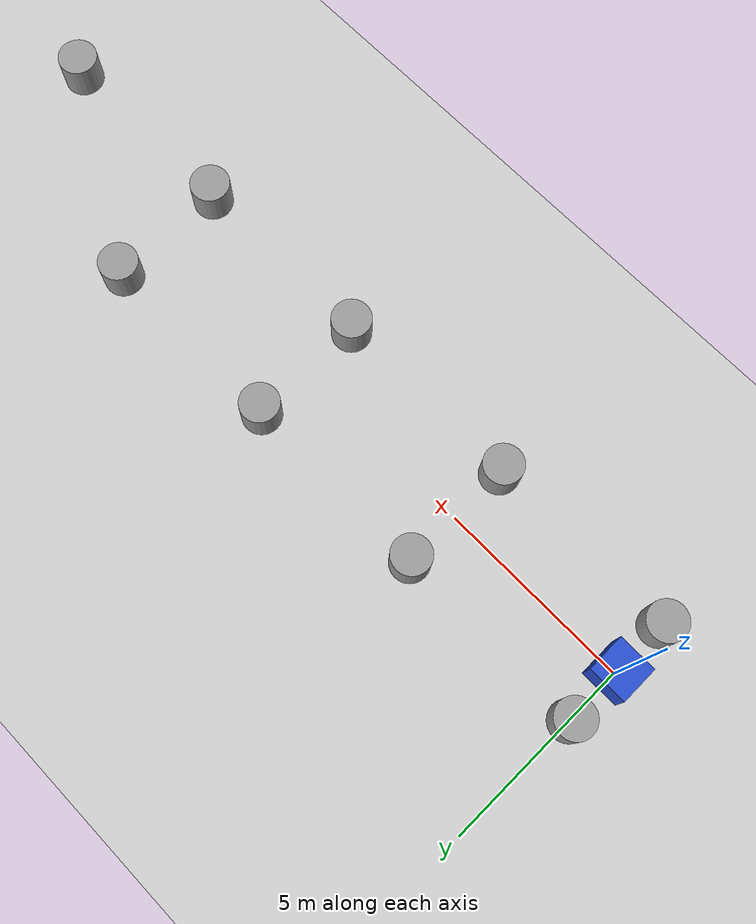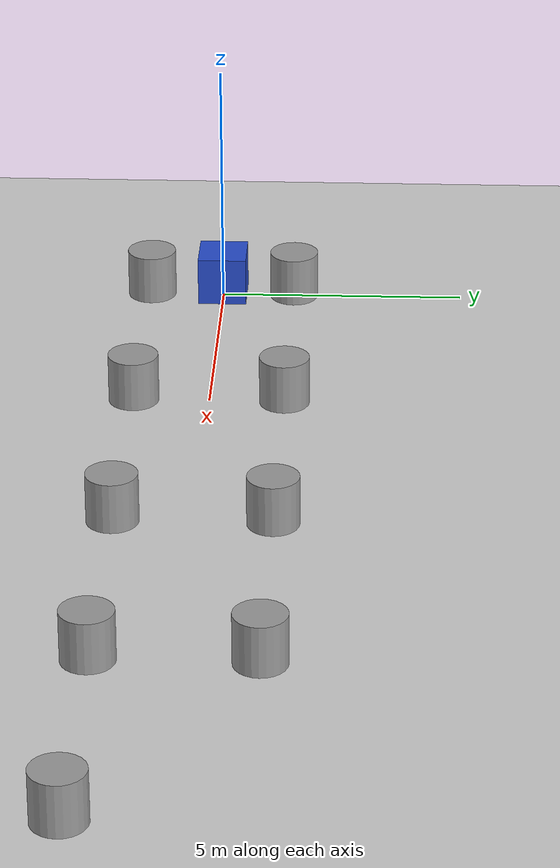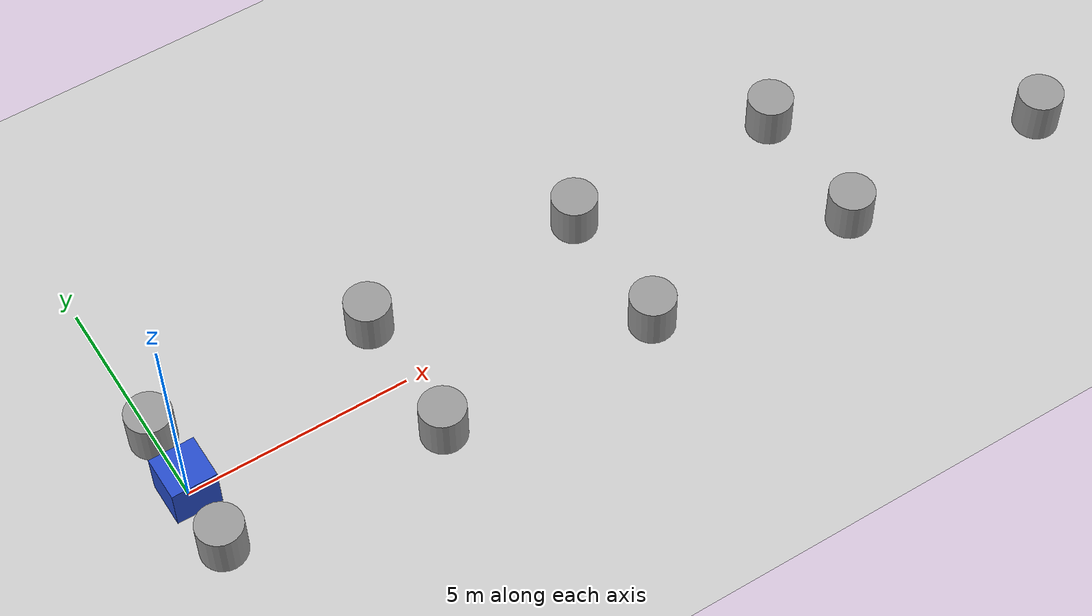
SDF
<sdf version="1.7">
 <world name="default">
  <model name="ground_plane">
   <static>1</static>
   <link name="link">
    <collision name="collision">
     <geometry><plane><normal>0 0 1</normal><size>100 100</size></plane></geometry>
     <surface>
      <contact><collide_bitmask>65535</collide_bitmask></contact>
      <friction><ode><mu>100</mu><mu2>50</mu2></ode></friction>
     </surface>
    </collision>
    <visual name="visual">
     <cast_shadows>0</cast_shadows>
     <geometry><plane><normal>0 0 1</normal><size>100 100</size></plane></geometry>
     <material>
      <script><uri>file://media/materials/scripts/gazebo.material</uri><name>Gazebo/Grey</name></script>
     </material>
    </visual>
   </link>
  </model>
  <model name="box_robot">
   <link name="base_link">
    <inertial>
     <mass>1000</mass>
     <inertia><ixx>166.667</ixx><ixy>0</ixy><ixz>0</ixz><iyy>166.667</iyy><iyz>0</iyz><izz>166.667</izz></inertia>
    </inertial>
    <collision name="base_link_collision">
     <geometry><box><size>1 1 1</size></box></geometry>
     <surface><friction><ode><mu>0.5</mu><mu2>0.5</mu2></ode></friction></surface>
    </collision>
    <visual name="base_link_visual">
     <geometry><box><size>1 1 1</size></box></geometry>
     <material>
      <script><name>Gazebo/Blue</name><uri>file://media/materials/scripts/gazebo.material</uri></script>
     </material>
    </visual>
   </link>
   <pose>0 -0 0.5 0 -0 0</pose>
  </model>
  <model name="unit_cylinder">
   <pose>15 -1.5 0.499994 -3e-06 -1e-06 -0</pose>
   <link name="link">
    <inertial>
     <mass>1</mass>
     <inertia><ixx>0.145833</ixx><ixy>0</ixy><ixz>0</ixz><iyy>0.145833</iyy><iyz>0</iyz><izz>0.125</izz></inertia>
    </inertial>
    <collision name="collision">
     <geometry><cylinder><radius>0.5</radius><length>1</length></cylinder></geometry>
    </collision>
    <visual name="visual">
     <geometry><cylinder><radius>0.5</radius><length>1</length></cylinder></geometry>
     <material>
      <script><name>Gazebo/Grey</name><uri>file://media/materials/scripts/gazebo.material</uri></script>
     </material>
    </visual>
   </link>
  </model>
  <model name="unit_cylinder_clone_0">
   <pose>20 -1.5 0.49999 0 -0 0</pose>
   <link name="link">
    <inertial>
     <mass>1</mass>
     <inertia><ixx>0.145833</ixx><ixy>0</ixy><ixz>0</ixz><iyy>0.145833</iyy><iyz>0</iyz><izz>0.125</izz></inertia>
    </inertial>
    <collision name="collision">
     <geometry><cylinder><radius>0.5</radius><length>1</length></cylinder></geometry>
    </collision>
    <visual name="visual">
     <geometry><cylinder><radius>0.5</radius><length>1</length></cylinder></geometry>
     <material>
      <script><name>Gazebo/Grey</name><uri>file://media/materials/scripts/gazebo.material</uri></script>
     </material>
    </visual>
   </link>
  </model>
  <model name="unit_cylinder_clone_8">
   <pose>2e-06 -1.5 0.499996 2e-06 -0 0</pose>
   <link name="link">
    <inertial>
     <mass>1</mass>
     <inertia><ixx>0.145833</ixx><ixy>0</ixy><ixz>0</ixz><iyy>0.145833</iyy><iyz>0</iyz><izz>0.125</izz></inertia>
    </inertial>
    <collision name="collision">
     <geometry><cylinder><radius>0.5</radius><length>1</length></cylinder></geometry>
    </collision>
    <visual name="visual">
     <geometry><cylinder><radius>0.5</radius><length>1</length></cylinder></geometry>
     <material>
      <script><name>Gazebo/Grey</name><uri>file://media/materials/scripts/gazebo.material</uri></script>
     </material>
    </visual>
   </link>
  </model>
  <model name="unit_cylinder_clone_9">
   <pose>5 -1.5 0.499996 3e-06 -0 0</pose>
   <link name="link">
    <inertial>
     <mass>1</mass>
     <inertia><ixx>0.145833</ixx><ixy>0</ixy><ixz>0</ixz><iyy>0.145833</iyy><iyz>0</iyz><izz>0.125</izz></inertia>
    </inertial>
    <collision name="collision">
     <geometry><cylinder><radius>0.5</radius><length>1</length></cylinder></geometry>
    </collision>
    <visual name="visual">
     <geometry><cylinder><radius>0.5</radius><length>1</length></cylinder></geometry>
     <material>
      <script><name>Gazebo/Grey</name><uri>file://media/materials/scripts/gazebo.material</uri></script>
     </material>
    </visual>
   </link>
  </model>
  <model name="unit_cylinder_clone_10">
   <pose>10 -1.5 0.5 0 -0 0</pose>
   <link name="link">
    <inertial>
     <mass>1</mass>
     <inertia><ixx>0.145833</ixx><ixy>0</ixy><ixz>0</ixz><iyy>0.145833</iyy><iyz>0</iyz><izz>0.125</izz></inertia>
    </inertial>
    <collision name="collision">
     <geometry><cylinder><radius>0.5</radius><length>1</length></cylinder></geometry>
    </collision>
    <visual name="visual">
     <geometry><cylinder><radius>0.5</radius><length>1</length></cylinder></geometry>
     <material>
      <script><name>Gazebo/Grey</name><uri>file://media/materials/scripts/gazebo.material</uri></script>
     </material>
    </visual>
   </link>
  </model>
  <model name="unit_cylinder_clone_18">
   <pose>15 1.5 0.499991 -0 -0 -0</pose>
   <link name="link">
    <inertial>
     <mass>1</mass>
     <inertia><ixx>0.145833</ixx><ixy>0</ixy><ixz>0</ixz><iyy>0.145833</iyy><iyz>0</iyz><izz>0.125</izz></inertia>
    </inertial>
    <collision name="collision">
     <geometry><cylinder><radius>0.5</radius><length>1</length></cylinder></geometry>
    </collision>
    <visual name="visual">
     <geometry><cylinder><radius>0.5</radius><length>1</length></cylinder></geometry>
     <material>
      <script><name>Gazebo/Grey</name><uri>file://media/materials/scripts/gazebo.material</uri></script>
     </material>
    </visual>
   </link>
  </model>
  <model name="unit_cylinder_clone_19">
   <pose>10 1.5 0.5 0 -0 0</pose>
   <link name="link">
    <inertial>
     <mass>1</mass>
     <inertia><ixx>0.145833</ixx><ixy>0</ixy><ixz>0</ixz><iyy>0.145833</iyy><iyz>0</iyz><izz>0.125</izz></inertia>
    </inertial>
    <collision name="collision">
     <geometry><cylinder><radius>0.5</radius><length>1</length></cylinder></geometry>
    </collision>
    <visual name="visual">
     <geometry><cylinder><radius>0.5</radius><length>1</length></cylinder></geometry>
     <material>
      <script><name>Gazebo/Grey</name><uri>file://media/materials/scripts/gazebo.material</uri></script>
     </material>
    </visual>
   </link>
  </model>
  <model name="unit_cylinder_clone_29">
   <pose>5 1.5 0.499997 4e-06 3e-06 -0</pose>
   <link name="link">
    <inertial>
     <mass>1</mass>
     <inertia><ixx>0.145833</ixx><ixy>0</ixy><ixz>0</ixz><iyy>0.145833</iyy><iyz>0</iyz><izz>0.125</izz></inertia>
    </inertial>
    <collision name="collision">
     <geometry><cylinder><radius>0.5</radius><length>1</length></cylinder></geometry>
    </collision>
    <visual name="visual">
     <geometry><cylinder><radius>0.5</radius><length>1</length></cylinder></geometry>
     <material>
      <script><name>Gazebo/Grey</name><uri>file://media/materials/scripts/gazebo.material</uri></script>
     </material>
    </visual>
   </link>
  </model>
  <model name="unit_cylinder_clone_30">
   <pose>1e-06 1.5 0.499994 -3e-06 -1e-06 -0</pose>
   <link name="link">
    <inertial>
     <mass>1</mass>
     <inertia><ixx>0.145833</ixx><ixy>0</ixy><ixz>0</ixz><iyy>0.145833</iyy><iyz>0</iyz><izz>0.125</izz></inertia>
    </inertial>
    <collision name="collision">
     <geometry><cylinder><radius>0.5</radius><length>1</length></cylinder></geometry>
    </collision>
    <visual name="visual">
     <geometry><cylinder><radius>0.5</radius><length>1</length></cylinder></geometry>
     <material>
      <script><name>Gazebo/Grey</name><uri>file://media/materials/scripts/gazebo.material</uri></script>
     </material>
    </visual>
   </link>
  </model>
 </world>
</sdf>
